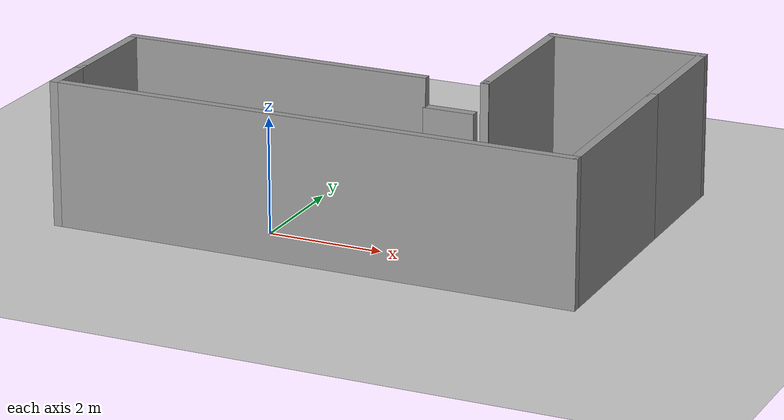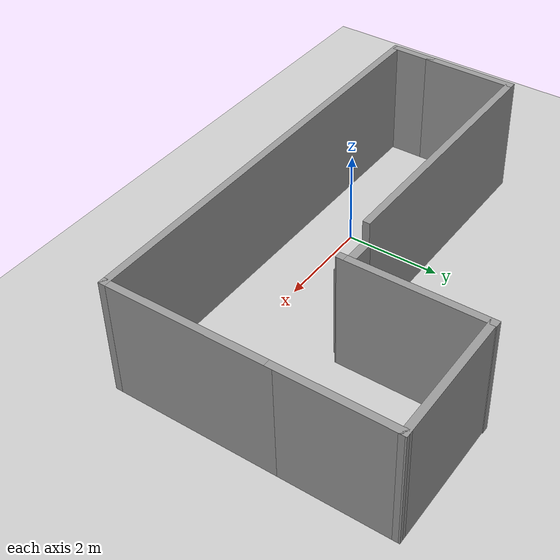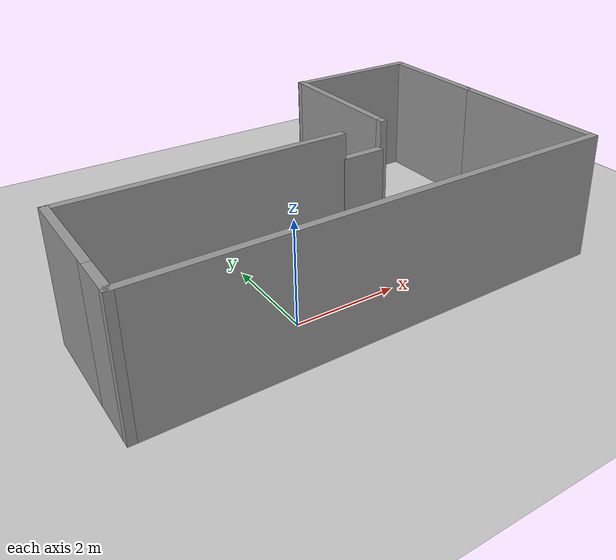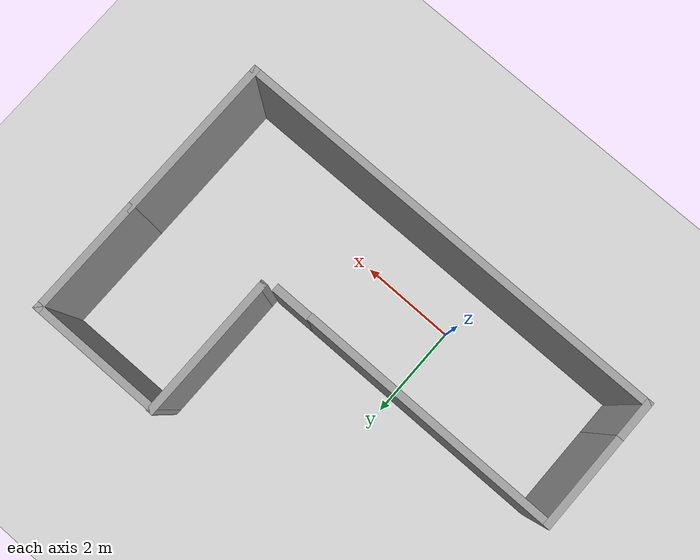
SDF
<sdf version="1.6">
 <world name="default">
  <light name="sun" type="directional">
   <pose>0 0 10 0 -0 0</pose>
   <diffuse>0.8 0.8 0.8 1</diffuse>
   <specular>0.2 0.2 0.2 1</specular>
   <attenuation>
    <range>1000</range>
    <constant>0.9</constant>
    <linear>0.01</linear>
    <quadratic>0.001</quadratic>
   </attenuation>
   <direction>-0.5 0.1 -0.9</direction>
  </light>
  <model name="ground_plane">
   <static>1</static>
   <link name="link">
    <collision name="collision">
     <geometry><plane><normal>0 0 1</normal><size>100 100</size></plane></geometry>
     <surface>
      <contact><collide_bitmask>65535</collide_bitmask></contact>
      <friction><ode><mu>100</mu><mu2>50</mu2></ode></friction>
     </surface>
    </collision>
    <visual name="visual">
     <cast_shadows>0</cast_shadows>
     <geometry><plane><normal>0 0 1</normal><size>100 100</size></plane></geometry>
     <material>
      <script><uri>file://media/materials/scripts/gazebo.material</uri><name>Gazebo/Grey</name></script>
     </material>
    </visual>
   </link>
  </model>
  <gravity>0 0 -9.8</gravity>
  <magnetic_field>6e-06 2.3e-05 -4.2e-05</magnetic_field>
  <atmosphere type="adiabatic"/>
  <physics name="default_physics" default="0" type="ode">
   <max_step_size>0.001</max_step_size>
   <real_time_factor>1</real_time_factor>
   <real_time_update_rate>1000</real_time_update_rate>
  </physics>
  <scene><ambient>0.4 0.4 0.4 1</ambient><background>0.7 0.7 0.7 1</background><shadows>1</shadows></scene>
  <audio><device>default</device></audio>
  <spherical_coordinates>
   <surface_model>EARTH_WGS84</surface_model>
   <latitude_deg>0</latitude_deg>
   <longitude_deg>0</longitude_deg>
   <elevation>0</elevation>
   <heading_deg>0</heading_deg>
  </spherical_coordinates>
  <model name="Untitled">
   <pose>1.20406 1.79321 0 0 0 -3.1401</pose>
   <link name="Door_0">
    <collision name="Door_0_Collision">
     <geometry><box><size>0.9 0.17 2</size></box></geometry>
     <pose>0 0 1 0 -0 0</pose>
    </collision>
    <visual name="Door_0_Visual">
     <pose>0 0 1 0 -0 0</pose>
     <geometry><box><size>0.9 0.17 2</size></box></geometry>
     <material>
      <script><uri>file://media/materials/scripts/gazebo.material</uri><name>Gazebo/Grey</name></script>
     </material>
    </visual>
    <pose>-1.286 0.163371 0 0 -0 0</pose>
   </link>
   <link name="Wall_10">
    <collision name="Wall_10_Collision">
     <geometry><box><size>5.5 0.15 2.5</size></box></geometry>
     <pose>0 0 1.25 0 -0 0</pose>
    </collision>
    <visual name="Wall_10_Visual">
     <pose>0 0 1.25 0 -0 0</pose>
     <geometry><box><size>5.5 0.15 2.5</size></box></geometry>
     <material>
      <script><uri>file://media/materials/scripts/gazebo.material</uri><name>Gazebo/Grey</name></script>
      <ambient>1 1 1 1</ambient>
     </material>
     <meta><layer>0</layer></meta>
    </visual>
    <pose>1.87517 0.153615 0 0 -0 0</pose>
   </link>
   <link name="Wall_11">
    <collision name="Wall_11_Collision">
     <geometry><box><size>2 0.15 2.5</size></box></geometry>
     <pose>0 0 1.25 0 -0 0</pose>
    </collision>
    <visual name="Wall_11_Visual">
     <pose>0 0 1.25 0 -0 0</pose>
     <geometry><box><size>2 0.15 2.5</size></box></geometry>
     <material>
      <script><uri>file://media/materials/scripts/gazebo.material</uri><name>Gazebo/Grey</name></script>
      <ambient>1 1 1 1</ambient>
     </material>
     <meta><layer>0</layer></meta>
    </visual>
    <pose>4.55017 1.07862 0 0 -0 1.5708</pose>
   </link>
   <link name="Wall_12">
    <collision name="Wall_12_Collision">
     <geometry><box><size>1 0.15 2.5</size></box></geometry>
     <pose>0 0 1.25 0 -0 0</pose>
    </collision>
    <visual name="Wall_12_Visual">
     <pose>0 0 1.25 0 -0 0</pose>
     <geometry><box><size>1 0.15 2.5</size></box></geometry>
     <material>
      <script><uri>file://media/materials/scripts/gazebo.material</uri><name>Gazebo/Grey</name></script>
      <ambient>1 1 1 1</ambient>
     </material>
     <meta><layer>0</layer></meta>
    </visual>
    <pose>4.55017 2.42862 0 0 -0 1.5708</pose>
   </link>
   <link name="Wall_13">
    <collision name="Wall_13_Collision">
     <geometry><box><size>9.25 0.15 2.5</size></box></geometry>
     <pose>0 0 1.25 0 -0 0</pose>
    </collision>
    <visual name="Wall_13_Visual">
     <pose>0 0 1.25 0 -0 0</pose>
     <geometry><box><size>9.25 0.15 2.5</size></box></geometry>
     <material>
      <script><uri>file://media/materials/scripts/gazebo.material</uri><name>Gazebo/Grey</name></script>
      <ambient>1 1 1 1</ambient>
     </material>
     <meta><layer>0</layer></meta>
    </visual>
    <pose>0.000172 2.85362 0 0 -0 3.14159</pose>
   </link>
   <link name="Wall_14">
    <collision name="Wall_14_Collision">
     <geometry><box><size>3.5 0.15 2.5</size></box></geometry>
     <pose>0 0 1.25 0 -0 0</pose>
    </collision>
    <visual name="Wall_14_Visual">
     <pose>0 0 1.25 0 -0 0</pose>
     <geometry><box><size>3.5 0.15 2.5</size></box></geometry>
     <material>
      <script><uri>file://media/materials/scripts/gazebo.material</uri><name>Gazebo/Grey</name></script>
      <ambient>1 1 1 1</ambient>
     </material>
     <meta><layer>0</layer></meta>
    </visual>
    <pose>-4.54983 1.17861 0 0 -0 -1.5708</pose>
   </link>
   <link name="Wall_15">
    <collision name="Wall_15_Collision">
     <geometry><box><size>2.5 0.15 2.5</size></box></geometry>
     <pose>0 0 1.25 0 -0 0</pose>
    </collision>
    <visual name="Wall_15_Visual">
     <pose>0 0 1.25 0 -0 0</pose>
     <geometry><box><size>2.5 0.15 2.5</size></box></geometry>
     <material>
      <script><uri>file://media/materials/scripts/gazebo.material</uri><name>Gazebo/Grey</name></script>
      <ambient>1 1 1 1</ambient>
     </material>
     <meta><layer>0</layer></meta>
    </visual>
    <pose>-4.54983 -1.67138 0 0 -0 -1.5708</pose>
   </link>
   <link name="Wall_16">
    <collision name="Wall_16_Collision">
     <geometry><box><size>2.83904 0.15 2.5</size></box></geometry>
     <pose>0 0 1.25 0 -0 0</pose>
    </collision>
    <visual name="Wall_16_Visual">
     <pose>0 0 1.25 0 -0 0</pose>
     <geometry><box><size>2.83904 0.15 2.5</size></box></geometry>
     <material>
      <script><uri>file://media/materials/scripts/gazebo.material</uri><name>Gazebo/Grey</name></script>
      <ambient>1 1 1 1</ambient>
     </material>
     <meta><layer>0</layer></meta>
    </visual>
    <pose>-3.20544 -2.84244 0 0 -0 0.002935</pose>
   </link>
   <link name="Wall_17">
    <collision name="Wall_17_Collision">
     <geometry><box><size>3 0.15 2.5</size></box></geometry>
     <pose>0 0 1.25 0 -0 0</pose>
    </collision>
    <visual name="Wall_17_Visual">
     <pose>0 0 1.25 0 -0 0</pose>
     <geometry><box><size>3 0.15 2.5</size></box></geometry>
     <material>
      <script><uri>file://media/materials/scripts/gazebo.material</uri><name>Gazebo/Grey</name></script>
      <ambient>1 1 1 1</ambient>
     </material>
     <meta><layer>0</layer></meta>
    </visual>
    <pose>-1.86105 -1.42861 0 0 -0 1.5708</pose>
   </link>
   <link name="Wall_20">
    <collision name="Wall_20_Collision">
     <geometry><box><size>0.15 0.15 2.5</size></box></geometry>
     <pose>0 0 1.25 0 -0 0</pose>
    </collision>
    <visual name="Wall_20_Visual">
     <pose>0 0 1.25 0 -0 0</pose>
     <geometry><box><size>0.15 0.15 2.5</size></box></geometry>
     <material>
      <script><uri>file://media/materials/scripts/gazebo.material</uri><name>Gazebo/Grey</name></script>
      <ambient>1 1 1 1</ambient>
     </material>
     <meta><layer>0</layer></meta>
    </visual>
    <pose>-1.86105 0.011508 0 0 -0 0</pose>
   </link>
   <static>1</static>
  </model>
 </world>
</sdf>
